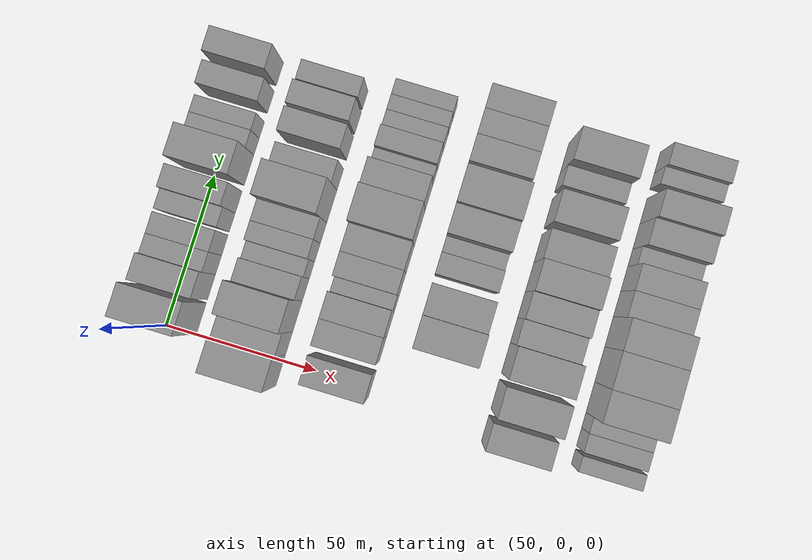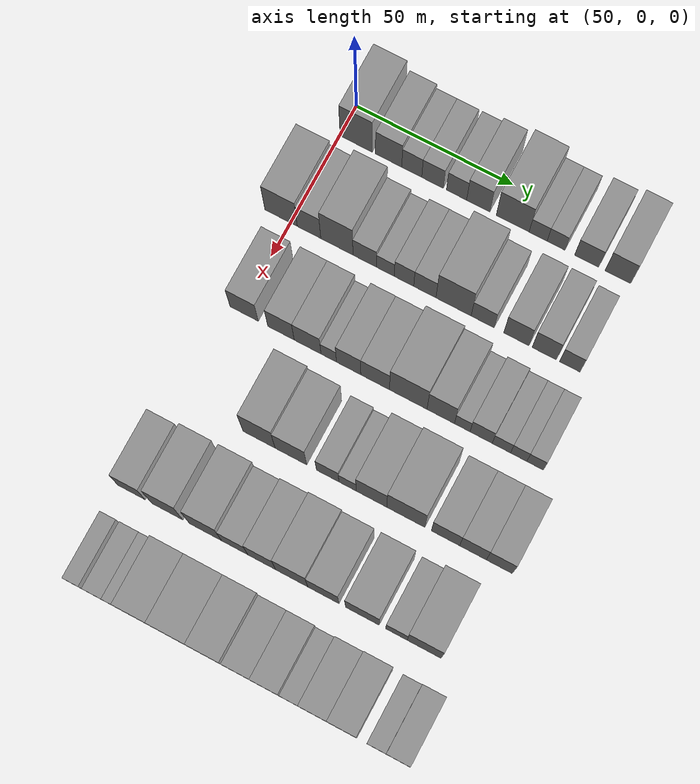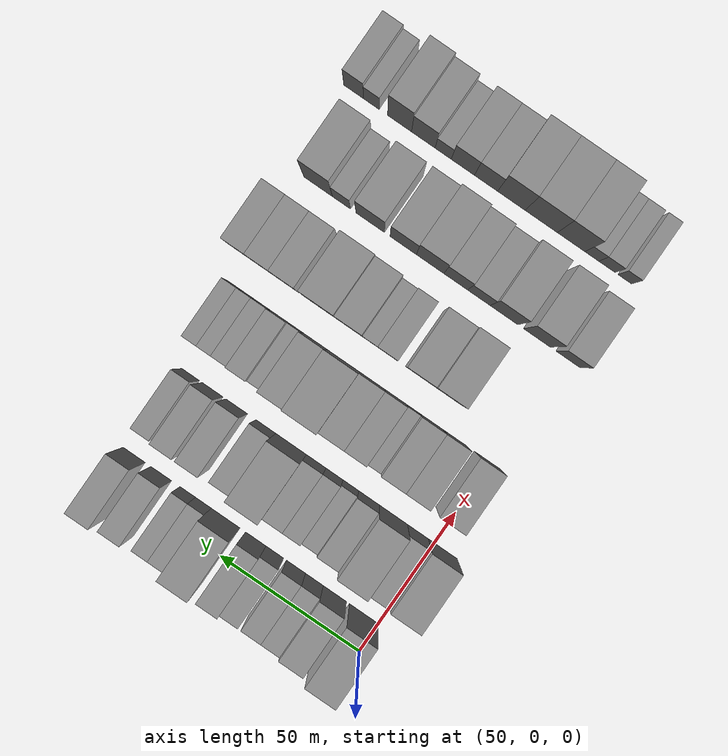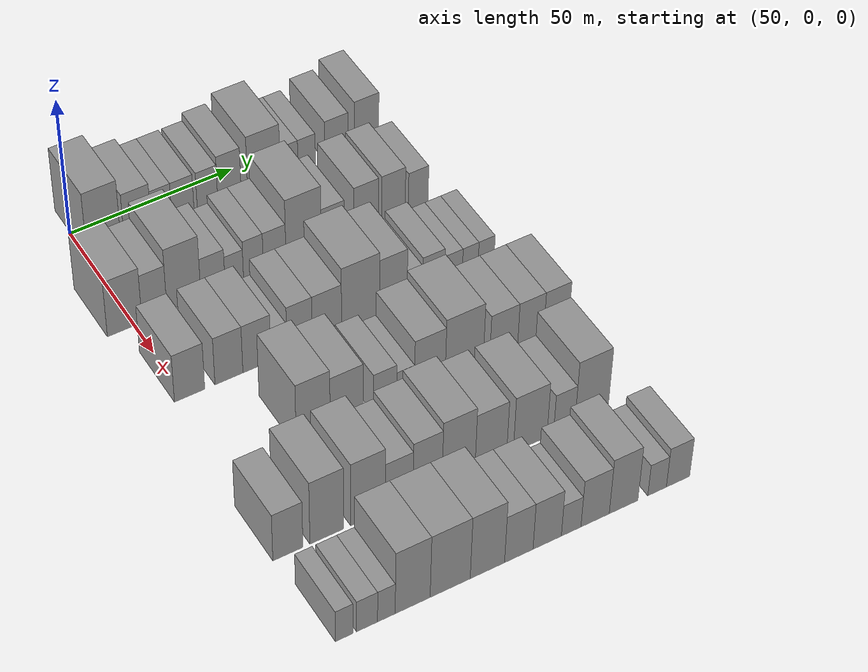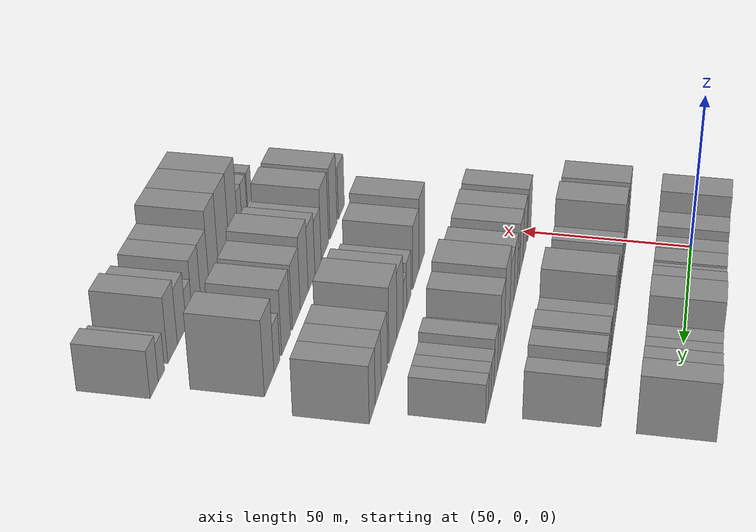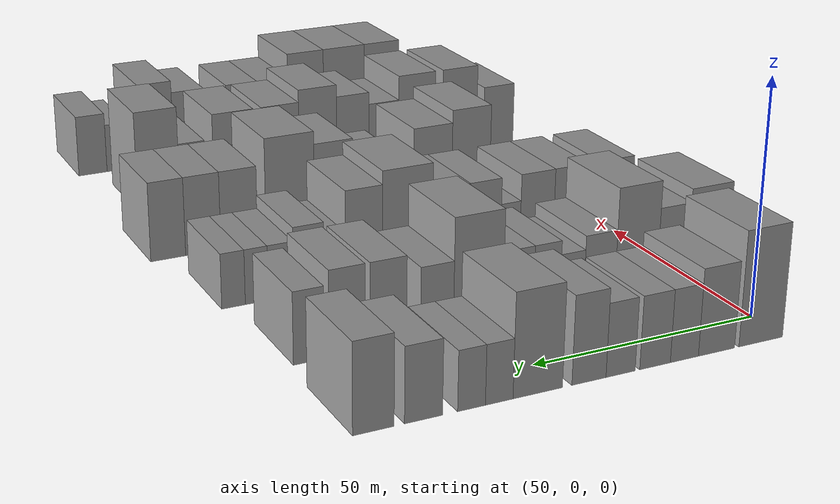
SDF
<sdf version="1.6">
 <world name="default">
  <model name="building_56">
   <static>1</static>
   <pose>50.0000 5.3377 0 0.000000 0.000000 0.000000</pose>
   <link name="link">
    <pose>0 0 12.00 0 0 0</pose>
    <collision name="collision"><geometry><box><size>20.0000 10.2984 24.0000</size></box></geometry></collision>
    <visual name="visual">
     <cast_shadows>0</cast_shadows>
     <geometry><box><size>20.0000 10.2984 24.0000</size></box></geometry>
     <material>
      <script>
       <uri>model://grey_wall/materials/scripts</uri>
       <uri>model://grey_wall/materials/textures</uri>
       <name>vrc/grey_wall</name>
      </script>
     </material>
    </visual>
   </link>
  </model>
  <model name="building_57">
   <static>1</static>
   <pose>50.0000 15.6601 0 0.000000 0.000000 0.000000</pose>
   <link name="link">
    <pose>0 0 9.00 0 0 0</pose>
    <collision name="collision"><geometry><box><size>20.0000 8.3464 18.0000</size></box></geometry></collision>
    <visual name="visual">
     <cast_shadows>0</cast_shadows>
     <geometry><box><size>20.0000 8.3464 18.0000</size></box></geometry>
     <material>
      <script>
       <uri>model://grey_wall/materials/scripts</uri>
       <uri>model://grey_wall/materials/textures</uri>
       <name>vrc/grey_wall</name>
      </script>
     </material>
    </visual>
   </link>
  </model>
  <model name="building_58">
   <static>1</static>
   <pose>50.0000 23.0112 0 0.000000 0.000000 0.000000</pose>
   <link name="link">
    <pose>0 0 7.50 0 0 0</pose>
    <collision name="collision"><geometry><box><size>20.0000 6.3558 15.0000</size></box></geometry></collision>
    <visual name="visual">
     <cast_shadows>0</cast_shadows>
     <geometry><box><size>20.0000 6.3558 15.0000</size></box></geometry>
     <material>
      <script>
       <uri>model://grey_wall/materials/scripts</uri>
       <uri>model://grey_wall/materials/textures</uri>
       <name>vrc/grey_wall</name>
      </script>
     </material>
    </visual>
   </link>
  </model>
  <model name="building_59">
   <static>1</static>
   <pose>50.0000 29.6008 0 0.000000 0.000000 0.000000</pose>
   <link name="link">
    <pose>0 0 7.50 0 0 0</pose>
    <collision name="collision"><geometry><box><size>20.0000 6.8233 15.0000</size></box></geometry></collision>
    <visual name="visual">
     <cast_shadows>0</cast_shadows>
     <geometry><box><size>20.0000 6.8233 15.0000</size></box></geometry>
     <material>
      <script>
       <uri>model://grey_wall/materials/scripts</uri>
       <uri>model://grey_wall/materials/textures</uri>
       <name>vrc/grey_wall</name>
      </script>
     </material>
    </visual>
   </link>
  </model>
  <model name="building_60">
   <static>1</static>
   <pose>50.0000 37.1964 0 0.000000 0.000000 0.000000</pose>
   <link name="link">
    <pose>0 0 7.50 0 0 0</pose>
    <collision name="collision"><geometry><box><size>20.0000 6.3681 15.0000</size></box></geometry></collision>
    <visual name="visual">
     <cast_shadows>0</cast_shadows>
     <geometry><box><size>20.0000 6.3681 15.0000</size></box></geometry>
     <material>
      <script>
       <uri>model://grey_wall/materials/scripts</uri>
       <uri>model://grey_wall/materials/textures</uri>
       <name>vrc/grey_wall</name>
      </script>
     </material>
    </visual>
   </link>
  </model>
  <model name="building_61">
   <static>1</static>
   <pose>50.0000 44.0449 0 0.000000 0.000000 0.000000</pose>
   <link name="link">
    <pose>0 0 9.00 0 0 0</pose>
    <collision name="collision"><geometry><box><size>20.0000 7.3289 18.0000</size></box></geometry></collision>
    <visual name="visual">
     <cast_shadows>0</cast_shadows>
     <geometry><box><size>20.0000 7.3289 18.0000</size></box></geometry>
     <material>
      <script>
       <uri>model://grey_wall/materials/scripts</uri>
       <uri>model://grey_wall/materials/textures</uri>
       <name>vrc/grey_wall</name>
      </script>
     </material>
    </visual>
   </link>
  </model>
  <model name="building_62">
   <static>1</static>
   <pose>50.0000 54.8682 0 0.000000 0.000000 0.000000</pose>
   <link name="link">
    <pose>0 0 10.50 0 0 0</pose>
    <collision name="collision"><geometry><box><size>20.0000 10.3177 21.0000</size></box></geometry></collision>
    <visual name="visual">
     <cast_shadows>0</cast_shadows>
     <geometry><box><size>20.0000 10.3177 21.0000</size></box></geometry>
     <material>
      <script>
       <uri>model://grey_wall/materials/scripts</uri>
       <uri>model://grey_wall/materials/textures</uri>
       <name>vrc/grey_wall</name>
      </script>
     </material>
    </visual>
   </link>
  </model>
  <model name="building_63">
   <static>1</static>
   <pose>50.0000 62.8464 0 0.000000 0.000000 0.000000</pose>
   <link name="link">
    <pose>0 0 6.00 0 0 0</pose>
    <collision name="collision"><geometry><box><size>20.0000 5.6387 12.0000</size></box></geometry></collision>
    <visual name="visual">
     <cast_shadows>0</cast_shadows>
     <geometry><box><size>20.0000 5.6387 12.0000</size></box></geometry>
     <material>
      <script>
       <uri>model://grey_wall/materials/scripts</uri>
       <uri>model://grey_wall/materials/textures</uri>
       <name>vrc/grey_wall</name>
      </script>
     </material>
    </visual>
   </link>
  </model>
  <model name="building_64">
   <static>1</static>
   <pose>50.0000 68.4595 0 0.000000 0.000000 0.000000</pose>
   <link name="link">
    <pose>0 0 6.00 0 0 0</pose>
    <collision name="collision"><geometry><box><size>20.0000 5.5874 12.0000</size></box></geometry></collision>
    <visual name="visual">
     <cast_shadows>0</cast_shadows>
     <geometry><box><size>20.0000 5.5874 12.0000</size></box></geometry>
     <material>
      <script>
       <uri>model://grey_wall/materials/scripts</uri>
       <uri>model://grey_wall/materials/textures</uri>
       <name>vrc/grey_wall</name>
      </script>
     </material>
    </visual>
   </link>
  </model>
  <model name="building_65">
   <static>1</static>
   <pose>50.0000 77.9872 0 0.000000 0.000000 0.000000</pose>
   <link name="link">
    <pose>0 0 7.50 0 0 0</pose>
    <collision name="collision"><geometry><box><size>20.0000 7.4680 15.0000</size></box></geometry></collision>
    <visual name="visual">
     <cast_shadows>0</cast_shadows>
     <geometry><box><size>20.0000 7.4680 15.0000</size></box></geometry>
     <material>
      <script>
       <uri>model://grey_wall/materials/scripts</uri>
       <uri>model://grey_wall/materials/textures</uri>
       <name>vrc/grey_wall</name>
      </script>
     </material>
    </visual>
   </link>
  </model>
  <model name="building_66">
   <static>1</static>
   <pose>50.0000 87.6970 0 0.000000 0.000000 0.000000</pose>
   <link name="link">
    <pose>0 0 9.00 0 0 0</pose>
    <collision name="collision"><geometry><box><size>20.0000 7.9515 18.0000</size></box></geometry></collision>
    <visual name="visual">
     <cast_shadows>0</cast_shadows>
     <geometry><box><size>20.0000 7.9515 18.0000</size></box></geometry>
     <material>
      <script>
       <uri>model://grey_wall/materials/scripts</uri>
       <uri>model://grey_wall/materials/textures</uri>
       <name>vrc/grey_wall</name>
      </script>
     </material>
    </visual>
   </link>
  </model>
  <model name="building_164">
   <static>1</static>
   <pose>79.0000 -2.9536 0 0.000000 0.000000 0.000000</pose>
   <link name="link">
    <pose>0 0 10.50 0 0 0</pose>
    <collision name="collision"><geometry><box><size>20.0000 10.2951 21.0000</size></box></geometry></collision>
    <visual name="visual">
     <cast_shadows>0</cast_shadows>
     <geometry><box><size>20.0000 10.2951 21.0000</size></box></geometry>
     <material>
      <script>
       <uri>model://grey_wall/materials/scripts</uri>
       <uri>model://grey_wall/materials/textures</uri>
       <name>vrc/grey_wall</name>
      </script>
     </material>
    </visual>
   </link>
  </model>
  <model name="building_165">
   <static>1</static>
   <pose>79.0000 5.9318 0 0.000000 0.000000 0.000000</pose>
   <link name="link">
    <pose>0 0 9.00 0 0 0</pose>
    <collision name="collision"><geometry><box><size>20.0000 7.4758 18.0000</size></box></geometry></collision>
    <visual name="visual">
     <cast_shadows>0</cast_shadows>
     <geometry><box><size>20.0000 7.4758 18.0000</size></box></geometry>
     <material>
      <script>
       <uri>model://grey_wall/materials/scripts</uri>
       <uri>model://grey_wall/materials/textures</uri>
       <name>vrc/grey_wall</name>
      </script>
     </material>
    </visual>
   </link>
  </model>
  <model name="building_166">
   <static>1</static>
   <pose>79.0000 14.7659 0 0.000000 0.000000 0.000000</pose>
   <link name="link">
    <pose>0 0 12.00 0 0 0</pose>
    <collision name="collision"><geometry><box><size>20.0000 10.1925 24.0000</size></box></geometry></collision>
    <visual name="visual">
     <cast_shadows>0</cast_shadows>
     <geometry><box><size>20.0000 10.1925 24.0000</size></box></geometry>
     <material>
      <script>
       <uri>model://grey_wall/materials/scripts</uri>
       <uri>model://grey_wall/materials/textures</uri>
       <name>vrc/grey_wall</name>
      </script>
     </material>
    </visual>
   </link>
  </model>
  <model name="building_167">
   <static>1</static>
   <pose>79.0000 23.5472 0 0.000000 0.000000 0.000000</pose>
   <link name="link">
    <pose>0 0 7.50 0 0 0</pose>
    <collision name="collision"><geometry><box><size>20.0000 7.3701 15.0000</size></box></geometry></collision>
    <visual name="visual">
     <cast_shadows>0</cast_shadows>
     <geometry><box><size>20.0000 7.3701 15.0000</size></box></geometry>
     <material>
      <script>
       <uri>model://grey_wall/materials/scripts</uri>
       <uri>model://grey_wall/materials/textures</uri>
       <name>vrc/grey_wall</name>
      </script>
     </material>
    </visual>
   </link>
  </model>
  <model name="building_168">
   <static>1</static>
   <pose>79.0000 30.0317 0 0.000000 0.000000 0.000000</pose>
   <link name="link">
    <pose>0 0 6.00 0 0 0</pose>
    <collision name="collision"><geometry><box><size>20.0000 5.5988 12.0000</size></box></geometry></collision>
    <visual name="visual">
     <cast_shadows>0</cast_shadows>
     <geometry><box><size>20.0000 5.5988 12.0000</size></box></geometry>
     <material>
      <script>
       <uri>model://grey_wall/materials/scripts</uri>
       <uri>model://grey_wall/materials/textures</uri>
       <name>vrc/grey_wall</name>
      </script>
     </material>
    </visual>
   </link>
  </model>
  <model name="building_169">
   <static>1</static>
   <pose>79.0000 35.8856 0 0.000000 0.000000 0.000000</pose>
   <link name="link">
    <pose>0 0 7.50 0 0 0</pose>
    <collision name="collision"><geometry><box><size>20.0000 6.1090 15.0000</size></box></geometry></collision>
    <visual name="visual">
     <cast_shadows>0</cast_shadows>
     <geometry><box><size>20.0000 6.1090 15.0000</size></box></geometry>
     <material>
      <script>
       <uri>model://grey_wall/materials/scripts</uri>
       <uri>model://grey_wall/materials/textures</uri>
       <name>vrc/grey_wall</name>
      </script>
     </material>
    </visual>
   </link>
  </model>
  <model name="building_170">
   <static>1</static>
   <pose>79.0000 42.4208 0 0.000000 0.000000 0.000000</pose>
   <link name="link">
    <pose>0 0 7.50 0 0 0</pose>
    <collision name="collision"><geometry><box><size>20.0000 6.9614 15.0000</size></box></geometry></collision>
    <visual name="visual">
     <cast_shadows>0</cast_shadows>
     <geometry><box><size>20.0000 6.9614 15.0000</size></box></geometry>
     <material>
      <script>
       <uri>model://grey_wall/materials/scripts</uri>
       <uri>model://grey_wall/materials/textures</uri>
       <name>vrc/grey_wall</name>
      </script>
     </material>
    </visual>
   </link>
  </model>
  <model name="building_171">
   <static>1</static>
   <pose>79.0000 51.3883 0 0.000000 0.000000 0.000000</pose>
   <link name="link">
    <pose>0 0 12.00 0 0 0</pose>
    <collision name="collision"><geometry><box><size>20.0000 10.9735 24.0000</size></box></geometry></collision>
    <visual name="visual">
     <cast_shadows>0</cast_shadows>
     <geometry><box><size>20.0000 10.9735 24.0000</size></box></geometry>
     <material>
      <script>
       <uri>model://grey_wall/materials/scripts</uri>
       <uri>model://grey_wall/materials/textures</uri>
       <name>vrc/grey_wall</name>
      </script>
     </material>
    </visual>
   </link>
  </model>
  <model name="building_172">
   <static>1</static>
   <pose>79.0000 60.4503 0 0.000000 0.000000 0.000000</pose>
   <link name="link">
    <pose>0 0 7.50 0 0 0</pose>
    <collision name="collision"><geometry><box><size>20.0000 7.1504 15.0000</size></box></geometry></collision>
    <visual name="visual">
     <cast_shadows>0</cast_shadows>
     <geometry><box><size>20.0000 7.1504 15.0000</size></box></geometry>
     <material>
      <script>
       <uri>model://grey_wall/materials/scripts</uri>
       <uri>model://grey_wall/materials/textures</uri>
       <name>vrc/grey_wall</name>
      </script>
     </material>
    </visual>
   </link>
  </model>
  <model name="building_173">
   <static>1</static>
   <pose>79.0000 70.9192 0 0.000000 0.000000 0.000000</pose>
   <link name="link">
    <pose>0 0 9.00 0 0 0</pose>
    <collision name="collision"><geometry><box><size>20.0000 7.7874 18.0000</size></box></geometry></collision>
    <visual name="visual">
     <cast_shadows>0</cast_shadows>
     <geometry><box><size>20.0000 7.7874 18.0000</size></box></geometry>
     <material>
      <script>
       <uri>model://grey_wall/materials/scripts</uri>
       <uri>model://grey_wall/materials/textures</uri>
       <name>vrc/grey_wall</name>
      </script>
     </material>
    </visual>
   </link>
  </model>
  <model name="building_174">
   <static>1</static>
   <pose>79.0000 79.5469 0 0.000000 0.000000 0.000000</pose>
   <link name="link">
    <pose>0 0 9.00 0 0 0</pose>
    <collision name="collision"><geometry><box><size>20.0000 7.4681 18.0000</size></box></geometry></collision>
    <visual name="visual">
     <cast_shadows>0</cast_shadows>
     <geometry><box><size>20.0000 7.4681 18.0000</size></box></geometry>
     <material>
      <script>
       <uri>model://grey_wall/materials/scripts</uri>
       <uri>model://grey_wall/materials/textures</uri>
       <name>vrc/grey_wall</name>
      </script>
     </material>
    </visual>
   </link>
  </model>
  <model name="building_175">
   <static>1</static>
   <pose>79.0000 87.4397 0 0.000000 0.000000 0.000000</pose>
   <link name="link">
    <pose>0 0 7.50 0 0 0</pose>
    <collision name="collision"><geometry><box><size>20.0000 6.3174 15.0000</size></box></geometry></collision>
    <visual name="visual">
     <cast_shadows>0</cast_shadows>
     <geometry><box><size>20.0000 6.3174 15.0000</size></box></geometry>
     <material>
      <script>
       <uri>model://grey_wall/materials/scripts</uri>
       <uri>model://grey_wall/materials/textures</uri>
       <name>vrc/grey_wall</name>
      </script>
     </material>
    </visual>
   </link>
  </model>
  <model name="building_278">
   <static>1</static>
   <pose>108.0000 1.2918 0 0.000000 0.000000 0.000000</pose>
   <link name="link">
    <pose>0 0 9.00 0 0 0</pose>
    <collision name="collision"><geometry><box><size>20.0000 8.9008 18.0000</size></box></geometry></collision>
    <visual name="visual">
     <cast_shadows>0</cast_shadows>
     <geometry><box><size>20.0000 8.9008 18.0000</size></box></geometry>
     <material>
      <script>
       <uri>model://grey_wall/materials/scripts</uri>
       <uri>model://grey_wall/materials/textures</uri>
       <name>vrc/grey_wall</name>
      </script>
     </material>
    </visual>
   </link>
  </model>
  <model name="building_279">
   <static>1</static>
   <pose>108.0000 12.8833 0 0.000000 0.000000 0.000000</pose>
   <link name="link">
    <pose>0 0 9.00 0 0 0</pose>
    <collision name="collision"><geometry><box><size>20.0000 8.2822 18.0000</size></box></geometry></collision>
    <visual name="visual">
     <cast_shadows>0</cast_shadows>
     <geometry><box><size>20.0000 8.2822 18.0000</size></box></geometry>
     <material>
      <script>
       <uri>model://grey_wall/materials/scripts</uri>
       <uri>model://grey_wall/materials/textures</uri>
       <name>vrc/grey_wall</name>
      </script>
     </material>
    </visual>
   </link>
  </model>
  <model name="building_280">
   <static>1</static>
   <pose>108.0000 21.2233 0 0.000000 0.000000 0.000000</pose>
   <link name="link">
    <pose>0 0 9.00 0 0 0</pose>
    <collision name="collision"><geometry><box><size>20.0000 8.3977 18.0000</size></box></geometry></collision>
    <visual name="visual">
     <cast_shadows>0</cast_shadows>
     <geometry><box><size>20.0000 8.3977 18.0000</size></box></geometry>
     <material>
      <script>
       <uri>model://grey_wall/materials/scripts</uri>
       <uri>model://grey_wall/materials/textures</uri>
       <name>vrc/grey_wall</name>
      </script>
     </material>
    </visual>
   </link>
  </model>
  <model name="building_281">
   <static>1</static>
   <pose>108.0000 27.8239 0 0.000000 0.000000 0.000000</pose>
   <link name="link">
    <pose>0 0 6.00 0 0 0</pose>
    <collision name="collision"><geometry><box><size>20.0000 4.8034 12.0000</size></box></geometry></collision>
    <visual name="visual">
     <cast_shadows>0</cast_shadows>
     <geometry><box><size>20.0000 4.8034 12.0000</size></box></geometry>
     <material>
      <script>
       <uri>model://grey_wall/materials/scripts</uri>
       <uri>model://grey_wall/materials/textures</uri>
       <name>vrc/grey_wall</name>
      </script>
     </material>
    </visual>
   </link>
  </model>
  <model name="building_282">
   <static>1</static>
   <pose>108.0000 34.0254 0 0.000000 0.000000 0.000000</pose>
   <link name="link">
    <pose>0 0 9.00 0 0 0</pose>
    <collision name="collision"><geometry><box><size>20.0000 7.5995 18.0000</size></box></geometry></collision>
    <visual name="visual">
     <cast_shadows>0</cast_shadows>
     <geometry><box><size>20.0000 7.5995 18.0000</size></box></geometry>
     <material>
      <script>
       <uri>model://grey_wall/materials/scripts</uri>
       <uri>model://grey_wall/materials/textures</uri>
       <name>vrc/grey_wall</name>
      </script>
     </material>
    </visual>
   </link>
  </model>
  <model name="building_283">
   <static>1</static>
   <pose>108.0000 42.2703 0 0.000000 0.000000 0.000000</pose>
   <link name="link">
    <pose>0 0 9.00 0 0 0</pose>
    <collision name="collision"><geometry><box><size>20.0000 8.8905 18.0000</size></box></geometry></collision>
    <visual name="visual">
     <cast_shadows>0</cast_shadows>
     <geometry><box><size>20.0000 8.8905 18.0000</size></box></geometry>
     <material>
      <script>
       <uri>model://grey_wall/materials/scripts</uri>
       <uri>model://grey_wall/materials/textures</uri>
       <name>vrc/grey_wall</name>
      </script>
     </material>
    </visual>
   </link>
  </model>
  <model name="building_284">
   <static>1</static>
   <pose>108.0000 52.5350 0 0.000000 0.000000 0.000000</pose>
   <link name="link">
    <pose>0 0 12.00 0 0 0</pose>
    <collision name="collision"><geometry><box><size>20.0000 11.6388 24.0000</size></box></geometry></collision>
    <visual name="visual">
     <cast_shadows>0</cast_shadows>
     <geometry><box><size>20.0000 11.6388 24.0000</size></box></geometry>
     <material>
      <script>
       <uri>model://grey_wall/materials/scripts</uri>
       <uri>model://grey_wall/materials/textures</uri>
       <name>vrc/grey_wall</name>
      </script>
     </material>
    </visual>
   </link>
  </model>
  <model name="building_285">
   <static>1</static>
   <pose>108.0000 62.5821 0 0.000000 0.000000 0.000000</pose>
   <link name="link">
    <pose>0 0 10.50 0 0 0</pose>
    <collision name="collision"><geometry><box><size>20.0000 8.4555 21.0000</size></box></geometry></collision>
    <visual name="visual">
     <cast_shadows>0</cast_shadows>
     <geometry><box><size>20.0000 8.4555 21.0000</size></box></geometry>
     <material>
      <script>
       <uri>model://grey_wall/materials/scripts</uri>
       <uri>model://grey_wall/materials/textures</uri>
       <name>vrc/grey_wall</name>
      </script>
     </material>
    </visual>
   </link>
  </model>
  <model name="building_286">
   <static>1</static>
   <pose>108.0000 69.2173 0 0.000000 0.000000 0.000000</pose>
   <link name="link">
    <pose>0 0 6.00 0 0 0</pose>
    <collision name="collision"><geometry><box><size>20.0000 4.8148 12.0000</size></box></geometry></collision>
    <visual name="visual">
     <cast_shadows>0</cast_shadows>
     <geometry><box><size>20.0000 4.8148 12.0000</size></box></geometry>
     <material>
      <script>
       <uri>model://grey_wall/materials/scripts</uri>
       <uri>model://grey_wall/materials/textures</uri>
       <name>vrc/grey_wall</name>
      </script>
     </material>
    </visual>
   </link>
  </model>
  <model name="building_287">
   <static>1</static>
   <pose>108.0000 75.0352 0 0.000000 0.000000 0.000000</pose>
   <link name="link">
    <pose>0 0 7.50 0 0 0</pose>
    <collision name="collision"><geometry><box><size>20.0000 6.8211 15.0000</size></box></geometry></collision>
    <visual name="visual">
     <cast_shadows>0</cast_shadows>
     <geometry><box><size>20.0000 6.8211 15.0000</size></box></geometry>
     <material>
      <script>
       <uri>model://grey_wall/materials/scripts</uri>
       <uri>model://grey_wall/materials/textures</uri>
       <name>vrc/grey_wall</name>
      </script>
     </material>
    </visual>
   </link>
  </model>
  <model name="building_288">
   <static>1</static>
   <pose>108.0000 81.2509 0 0.000000 0.000000 0.000000</pose>
   <link name="link">
    <pose>0 0 6.00 0 0 0</pose>
    <collision name="collision"><geometry><box><size>20.0000 5.6101 12.0000</size></box></geometry></collision>
    <visual name="visual">
     <cast_shadows>0</cast_shadows>
     <geometry><box><size>20.0000 5.6101 12.0000</size></box></geometry>
     <material>
      <script>
       <uri>model://grey_wall/materials/scripts</uri>
       <uri>model://grey_wall/materials/textures</uri>
       <name>vrc/grey_wall</name>
      </script>
     </material>
    </visual>
   </link>
  </model>
  <model name="building_289">
   <static>1</static>
   <pose>108.0000 86.5402 0 0.000000 0.000000 0.000000</pose>
   <link name="link">
    <pose>0 0 6.00 0 0 0</pose>
    <collision name="collision"><geometry><box><size>20.0000 4.9685 12.0000</size></box></geometry></collision>
    <visual name="visual">
     <cast_shadows>0</cast_shadows>
     <geometry><box><size>20.0000 4.9685 12.0000</size></box></geometry>
     <material>
      <script>
       <uri>model://grey_wall/materials/scripts</uri>
       <uri>model://grey_wall/materials/textures</uri>
       <name>vrc/grey_wall</name>
      </script>
     </material>
    </visual>
   </link>
  </model>
  <model name="building_290">
   <static>1</static>
   <pose>108.0000 91.5562 0 0.000000 0.000000 0.000000</pose>
   <link name="link">
    <pose>0 0 6.00 0 0 0</pose>
    <collision name="collision"><geometry><box><size>20.0000 5.0635 12.0000</size></box></geometry></collision>
    <visual name="visual">
     <cast_shadows>0</cast_shadows>
     <geometry><box><size>20.0000 5.0635 12.0000</size></box></geometry>
     <material>
      <script>
       <uri>model://grey_wall/materials/scripts</uri>
       <uri>model://grey_wall/materials/textures</uri>
       <name>vrc/grey_wall</name>
      </script>
     </material>
    </visual>
   </link>
  </model>
  <model name="building_393">
   <static>1</static>
   <pose>137.0000 21.9258 0 0.000000 0.000000 0.000000</pose>
   <link name="link">
    <pose>0 0 12.00 0 0 0</pose>
    <collision name="collision"><geometry><box><size>20.0000 9.9744 24.0000</size></box></geometry></collision>
    <visual name="visual">
     <cast_shadows>0</cast_shadows>
     <geometry><box><size>20.0000 9.9744 24.0000</size></box></geometry>
     <material>
      <script>
       <uri>model://grey_wall/materials/scripts</uri>
       <uri>model://grey_wall/materials/textures</uri>
       <name>vrc/grey_wall</name>
      </script>
     </material>
    </visual>
   </link>
  </model>
  <model name="building_394">
   <static>1</static>
   <pose>137.0000 31.8021 0 0.000000 0.000000 0.000000</pose>
   <link name="link">
    <pose>0 0 10.50 0 0 0</pose>
    <collision name="collision"><geometry><box><size>20.0000 9.7782 21.0000</size></box></geometry></collision>
    <visual name="visual">
     <cast_shadows>0</cast_shadows>
     <geometry><box><size>20.0000 9.7782 21.0000</size></box></geometry>
     <material>
      <script>
       <uri>model://grey_wall/materials/scripts</uri>
       <uri>model://grey_wall/materials/textures</uri>
       <name>vrc/grey_wall</name>
      </script>
     </material>
    </visual>
   </link>
  </model>
  <model name="building_395">
   <static>1</static>
   <pose>137.0000 43.1486 0 0.000000 0.000000 0.000000</pose>
   <link name="link">
    <pose>0 0 7.50 0 0 0</pose>
    <collision name="collision"><geometry><box><size>20.0000 6.9146 15.0000</size></box></geometry></collision>
    <visual name="visual">
     <cast_shadows>0</cast_shadows>
     <geometry><box><size>20.0000 6.9146 15.0000</size></box></geometry>
     <material>
      <script>
       <uri>model://grey_wall/materials/scripts</uri>
       <uri>model://grey_wall/materials/textures</uri>
       <name>vrc/grey_wall</name>
      </script>
     </material>
    </visual>
   </link>
  </model>
  <model name="building_396">
   <static>1</static>
   <pose>137.0000 49.2742 0 0.000000 0.000000 0.000000</pose>
   <link name="link">
    <pose>0 0 6.00 0 0 0</pose>
    <collision name="collision"><geometry><box><size>20.0000 5.3367 12.0000</size></box></geometry></collision>
    <visual name="visual">
     <cast_shadows>0</cast_shadows>
     <geometry><box><size>20.0000 5.3367 12.0000</size></box></geometry>
     <material>
      <script>
       <uri>model://grey_wall/materials/scripts</uri>
       <uri>model://grey_wall/materials/textures</uri>
       <name>vrc/grey_wall</name>
      </script>
     </material>
    </visual>
   </link>
  </model>
  <model name="building_397">
   <static>1</static>
   <pose>137.0000 56.6134 0 0.000000 0.000000 0.000000</pose>
   <link name="link">
    <pose>0 0 10.50 0 0 0</pose>
    <collision name="collision"><geometry><box><size>20.0000 9.3418 21.0000</size></box></geometry></collision>
    <visual name="visual">
     <cast_shadows>0</cast_shadows>
     <geometry><box><size>20.0000 9.3418 21.0000</size></box></geometry>
     <material>
      <script>
       <uri>model://grey_wall/materials/scripts</uri>
       <uri>model://grey_wall/materials/textures</uri>
       <name>vrc/grey_wall</name>
      </script>
     </material>
    </visual>
   </link>
  </model>
  <model name="building_398">
   <static>1</static>
   <pose>137.0000 67.1067 0 0.000000 0.000000 0.000000</pose>
   <link name="link">
    <pose>0 0 12.00 0 0 0</pose>
    <collision name="collision"><geometry><box><size>20.0000 11.6448 24.0000</size></box></geometry></collision>
    <visual name="visual">
     <cast_shadows>0</cast_shadows>
     <geometry><box><size>20.0000 11.6448 24.0000</size></box></geometry>
     <material>
      <script>
       <uri>model://grey_wall/materials/scripts</uri>
       <uri>model://grey_wall/materials/textures</uri>
       <name>vrc/grey_wall</name>
      </script>
     </material>
    </visual>
   </link>
  </model>
  <model name="building_399">
   <static>1</static>
   <pose>137.0000 79.2334 0 0.000000 0.000000 0.000000</pose>
   <link name="link">
    <pose>0 0 9.00 0 0 0</pose>
    <collision name="collision"><geometry><box><size>20.0000 8.6085 18.0000</size></box></geometry></collision>
    <visual name="visual">
     <cast_shadows>0</cast_shadows>
     <geometry><box><size>20.0000 8.6085 18.0000</size></box></geometry>
     <material>
      <script>
       <uri>model://grey_wall/materials/scripts</uri>
       <uri>model://grey_wall/materials/textures</uri>
       <name>vrc/grey_wall</name>
      </script>
     </material>
    </visual>
   </link>
  </model>
  <model name="building_400">
   <static>1</static>
   <pose>137.0000 87.5832 0 0.000000 0.000000 0.000000</pose>
   <link name="link">
    <pose>0 0 9.00 0 0 0</pose>
    <collision name="collision"><geometry><box><size>20.0000 8.0912 18.0000</size></box></geometry></collision>
    <visual name="visual">
     <cast_shadows>0</cast_shadows>
     <geometry><box><size>20.0000 8.0912 18.0000</size></box></geometry>
     <material>
      <script>
       <uri>model://grey_wall/materials/scripts</uri>
       <uri>model://grey_wall/materials/textures</uri>
       <name>vrc/grey_wall</name>
      </script>
     </material>
    </visual>
   </link>
  </model>
  <model name="building_401">
   <static>1</static>
   <pose>137.0000 95.5647 0 0.000000 0.000000 0.000000</pose>
   <link name="link">
    <pose>0 0 9.00 0 0 0</pose>
    <collision name="collision"><geometry><box><size>20.0000 7.8718 18.0000</size></box></geometry></collision>
    <visual name="visual">
     <cast_shadows>0</cast_shadows>
     <geometry><box><size>20.0000 7.8718 18.0000</size></box></geometry>
     <material>
      <script>
       <uri>model://grey_wall/materials/scripts</uri>
       <uri>model://grey_wall/materials/textures</uri>
       <name>vrc/grey_wall</name>
      </script>
     </material>
    </visual>
   </link>
  </model>
  <model name="building_504">
   <static>1</static>
   <pose>166.0000 -1.5237 0 0.000000 0.000000 0.000000</pose>
   <link name="link">
    <pose>0 0 9.00 0 0 0</pose>
    <collision name="collision"><geometry><box><size>20.0000 8.5031 18.0000</size></box></geometry></collision>
    <visual name="visual">
     <cast_shadows>0</cast_shadows>
     <geometry><box><size>20.0000 8.5031 18.0000</size></box></geometry>
     <material>
      <script>
       <uri>model://grey_wall/materials/scripts</uri>
       <uri>model://grey_wall/materials/textures</uri>
       <name>vrc/grey_wall</name>
      </script>
     </material>
    </visual>
   </link>
  </model>
  <model name="building_505">
   <static>1</static>
   <pose>166.0000 9.5569 0 0.000000 0.000000 0.000000</pose>
   <link name="link">
    <pose>0 0 12.00 0 0 0</pose>
    <collision name="collision"><geometry><box><size>20.0000 9.6581 24.0000</size></box></geometry></collision>
    <visual name="visual">
     <cast_shadows>0</cast_shadows>
     <geometry><box><size>20.0000 9.6581 24.0000</size></box></geometry>
     <material>
      <script>
       <uri>model://grey_wall/materials/scripts</uri>
       <uri>model://grey_wall/materials/textures</uri>
       <name>vrc/grey_wall</name>
      </script>
     </material>
    </visual>
   </link>
  </model>
  <model name="building_506">
   <static>1</static>
   <pose>166.0000 21.3772 0 0.000000 0.000000 0.000000</pose>
   <link name="link">
    <pose>0 0 12.00 0 0 0</pose>
    <collision name="collision"><geometry><box><size>20.0000 9.9826 24.0000</size></box></geometry></collision>
    <visual name="visual">
     <cast_shadows>0</cast_shadows>
     <geometry><box><size>20.0000 9.9826 24.0000</size></box></geometry>
     <material>
      <script>
       <uri>model://grey_wall/materials/scripts</uri>
       <uri>model://grey_wall/materials/textures</uri>
       <name>vrc/grey_wall</name>
      </script>
     </material>
    </visual>
   </link>
  </model>
  <model name="building_507">
   <static>1</static>
   <pose>166.0000 30.3991 0 0.000000 0.000000 0.000000</pose>
   <link name="link">
    <pose>0 0 9.00 0 0 0</pose>
    <collision name="collision"><geometry><box><size>20.0000 8.0612 18.0000</size></box></geometry></collision>
    <visual name="visual">
     <cast_shadows>0</cast_shadows>
     <geometry><box><size>20.0000 8.0612 18.0000</size></box></geometry>
     <material>
      <script>
       <uri>model://grey_wall/materials/scripts</uri>
       <uri>model://grey_wall/materials/textures</uri>
       <name>vrc/grey_wall</name>
      </script>
     </material>
    </visual>
   </link>
  </model>
  <model name="building_508">
   <static>1</static>
   <pose>166.0000 38.6995 0 0.000000 0.000000 0.000000</pose>
   <link name="link">
    <pose>0 0 10.50 0 0 0</pose>
    <collision name="collision"><geometry><box><size>20.0000 8.5395 21.0000</size></box></geometry></collision>
    <visual name="visual">
     <cast_shadows>0</cast_shadows>
     <geometry><box><size>20.0000 8.5395 21.0000</size></box></geometry>
     <material>
      <script>
       <uri>model://grey_wall/materials/scripts</uri>
       <uri>model://grey_wall/materials/textures</uri>
       <name>vrc/grey_wall</name>
      </script>
     </material>
    </visual>
   </link>
  </model>
  <model name="building_509">
   <static>1</static>
   <pose>166.0000 47.8733 0 0.000000 0.000000 0.000000</pose>
   <link name="link">
    <pose>0 0 12.00 0 0 0</pose>
    <collision name="collision"><geometry><box><size>20.0000 9.8081 24.0000</size></box></geometry></collision>
    <visual name="visual">
     <cast_shadows>0</cast_shadows>
     <geometry><box><size>20.0000 9.8081 24.0000</size></box></geometry>
     <material>
      <script>
       <uri>model://grey_wall/materials/scripts</uri>
       <uri>model://grey_wall/materials/textures</uri>
       <name>vrc/grey_wall</name>
      </script>
     </material>
    </visual>
   </link>
  </model>
  <model name="building_510">
   <static>1</static>
   <pose>166.0000 57.5107 0 0.000000 0.000000 0.000000</pose>
   <link name="link">
    <pose>0 0 10.50 0 0 0</pose>
    <collision name="collision"><geometry><box><size>20.0000 9.4669 21.0000</size></box></geometry></collision>
    <visual name="visual">
     <cast_shadows>0</cast_shadows>
     <geometry><box><size>20.0000 9.4669 21.0000</size></box></geometry>
     <material>
      <script>
       <uri>model://grey_wall/materials/scripts</uri>
       <uri>model://grey_wall/materials/textures</uri>
       <name>vrc/grey_wall</name>
      </script>
     </material>
    </visual>
   </link>
  </model>
  <model name="building_511">
   <static>1</static>
   <pose>166.0000 69.3303 0 0.000000 0.000000 0.000000</pose>
   <link name="link">
    <pose>0 0 10.50 0 0 0</pose>
    <collision name="collision"><geometry><box><size>20.0000 10.1723 21.0000</size></box></geometry></collision>
    <visual name="visual">
     <cast_shadows>0</cast_shadows>
     <geometry><box><size>20.0000 10.1723 21.0000</size></box></geometry>
     <material>
      <script>
       <uri>model://grey_wall/materials/scripts</uri>
       <uri>model://grey_wall/materials/textures</uri>
       <name>vrc/grey_wall</name>
      </script>
     </material>
    </visual>
   </link>
  </model>
  <model name="building_512">
   <static>1</static>
   <pose>166.0000 79.6611 0 0.000000 0.000000 0.000000</pose>
   <link name="link">
    <pose>0 0 7.50 0 0 0</pose>
    <collision name="collision"><geometry><box><size>20.0000 6.4892 15.0000</size></box></geometry></collision>
    <visual name="visual">
     <cast_shadows>0</cast_shadows>
     <geometry><box><size>20.0000 6.4892 15.0000</size></box></geometry>
     <material>
      <script>
       <uri>model://grey_wall/materials/scripts</uri>
       <uri>model://grey_wall/materials/textures</uri>
       <name>vrc/grey_wall</name>
      </script>
     </material>
    </visual>
   </link>
  </model>
  <model name="building_513">
   <static>1</static>
   <pose>166.0000 87.9920 0 0.000000 0.000000 0.000000</pose>
   <link name="link">
    <pose>0 0 12.00 0 0 0</pose>
    <collision name="collision"><geometry><box><size>20.0000 10.1726 24.0000</size></box></geometry></collision>
    <visual name="visual">
     <cast_shadows>0</cast_shadows>
     <geometry><box><size>20.0000 10.1726 24.0000</size></box></geometry>
     <material>
      <script>
       <uri>model://grey_wall/materials/scripts</uri>
       <uri>model://grey_wall/materials/textures</uri>
       <name>vrc/grey_wall</name>
      </script>
     </material>
    </visual>
   </link>
  </model>
  <model name="building_618">
   <static>1</static>
   <pose>195.0000 -1.9528 0 0.000000 0.000000 0.000000</pose>
   <link name="link">
    <pose>0 0 6.00 0 0 0</pose>
    <collision name="collision"><geometry><box><size>20.0000 4.9003 12.0000</size></box></geometry></collision>
    <visual name="visual">
     <cast_shadows>0</cast_shadows>
     <geometry><box><size>20.0000 4.9003 12.0000</size></box></geometry>
     <material>
      <script>
       <uri>model://grey_wall/materials/scripts</uri>
       <uri>model://grey_wall/materials/textures</uri>
       <name>vrc/grey_wall</name>
      </script>
     </material>
    </visual>
   </link>
  </model>
  <model name="building_619">
   <static>1</static>
   <pose>195.0000 4.4335 0 0.000000 0.000000 0.000000</pose>
   <link name="link">
    <pose>0 0 6.00 0 0 0</pose>
    <collision name="collision"><geometry><box><size>20.0000 5.8722 12.0000</size></box></geometry></collision>
    <visual name="visual">
     <cast_shadows>0</cast_shadows>
     <geometry><box><size>20.0000 5.8722 12.0000</size></box></geometry>
     <material>
      <script>
       <uri>model://grey_wall/materials/scripts</uri>
       <uri>model://grey_wall/materials/textures</uri>
       <name>vrc/grey_wall</name>
      </script>
     </material>
    </visual>
   </link>
  </model>
  <model name="building_620">
   <static>1</static>
   <pose>195.0000 9.8475 0 0.000000 0.000000 0.000000</pose>
   <link name="link">
    <pose>0 0 6.00 0 0 0</pose>
    <collision name="collision"><geometry><box><size>20.0000 4.9560 12.0000</size></box></geometry></collision>
    <visual name="visual">
     <cast_shadows>0</cast_shadows>
     <geometry><box><size>20.0000 4.9560 12.0000</size></box></geometry>
     <material>
      <script>
       <uri>model://grey_wall/materials/scripts</uri>
       <uri>model://grey_wall/materials/textures</uri>
       <name>vrc/grey_wall</name>
      </script>
     </material>
    </visual>
   </link>
  </model>
  <model name="building_621">
   <static>1</static>
   <pose>195.0000 17.2913 0 0.000000 0.000000 0.000000</pose>
   <link name="link">
    <pose>0 0 12.00 0 0 0</pose>
    <collision name="collision"><geometry><box><size>20.0000 9.9315 24.0000</size></box></geometry></collision>
    <visual name="visual">
     <cast_shadows>0</cast_shadows>
     <geometry><box><size>20.0000 9.9315 24.0000</size></box></geometry>
     <material>
      <script>
       <uri>model://grey_wall/materials/scripts</uri>
       <uri>model://grey_wall/materials/textures</uri>
       <name>vrc/grey_wall</name>
      </script>
     </material>
    </visual>
   </link>
  </model>
  <model name="building_622">
   <static>1</static>
   <pose>195.0000 28.0000 0 0.000000 0.000000 0.000000</pose>
   <link name="link">
    <pose>0 0 12.00 0 0 0</pose>
    <collision name="collision"><geometry><box><size>20.0000 11.4859 24.0000</size></box></geometry></collision>
    <visual name="visual">
     <cast_shadows>0</cast_shadows>
     <geometry><box><size>20.0000 11.4859 24.0000</size></box></geometry>
     <material>
      <script>
       <uri>model://grey_wall/materials/scripts</uri>
       <uri>model://grey_wall/materials/textures</uri>
       <name>vrc/grey_wall</name>
      </script>
     </material>
    </visual>
   </link>
  </model>
  <model name="building_623">
   <static>1</static>
   <pose>195.0000 38.7147 0 0.000000 0.000000 0.000000</pose>
   <link name="link">
    <pose>0 0 12.00 0 0 0</pose>
    <collision name="collision"><geometry><box><size>20.0000 9.9434 24.0000</size></box></geometry></collision>
    <visual name="visual">
     <cast_shadows>0</cast_shadows>
     <geometry><box><size>20.0000 9.9434 24.0000</size></box></geometry>
     <material>
      <script>
       <uri>model://grey_wall/materials/scripts</uri>
       <uri>model://grey_wall/materials/textures</uri>
       <name>vrc/grey_wall</name>
      </script>
     </material>
    </visual>
   </link>
  </model>
  <model name="building_624">
   <static>1</static>
   <pose>195.0000 47.8367 0 0.000000 0.000000 0.000000</pose>
   <link name="link">
    <pose>0 0 9.00 0 0 0</pose>
    <collision name="collision"><geometry><box><size>20.0000 8.3007 18.0000</size></box></geometry></collision>
    <visual name="visual">
     <cast_shadows>0</cast_shadows>
     <geometry><box><size>20.0000 8.3007 18.0000</size></box></geometry>
     <material>
      <script>
       <uri>model://grey_wall/materials/scripts</uri>
       <uri>model://grey_wall/materials/textures</uri>
       <name>vrc/grey_wall</name>
      </script>
     </material>
    </visual>
   </link>
  </model>
  <model name="building_625">
   <static>1</static>
   <pose>195.0000 56.1545 0 0.000000 0.000000 0.000000</pose>
   <link name="link">
    <pose>0 0 9.00 0 0 0</pose>
    <collision name="collision"><geometry><box><size>20.0000 8.3348 18.0000</size></box></geometry></collision>
    <visual name="visual">
     <cast_shadows>0</cast_shadows>
     <geometry><box><size>20.0000 8.3348 18.0000</size></box></geometry>
     <material>
      <script>
       <uri>model://grey_wall/materials/scripts</uri>
       <uri>model://grey_wall/materials/textures</uri>
       <name>vrc/grey_wall</name>
      </script>
     </material>
    </visual>
   </link>
  </model>
  <model name="building_626">
   <static>1</static>
   <pose>195.0000 63.2212 0 0.000000 0.000000 0.000000</pose>
   <link name="link">
    <pose>0 0 6.00 0 0 0</pose>
    <collision name="collision"><geometry><box><size>20.0000 5.7986 12.0000</size></box></geometry></collision>
    <visual name="visual">
     <cast_shadows>0</cast_shadows>
     <geometry><box><size>20.0000 5.7986 12.0000</size></box></geometry>
     <material>
      <script>
       <uri>model://grey_wall/materials/scripts</uri>
       <uri>model://grey_wall/materials/textures</uri>
       <name>vrc/grey_wall</name>
      </script>
     </material>
    </visual>
   </link>
  </model>
  <model name="building_627">
   <static>1</static>
   <pose>195.0000 70.3381 0 0.000000 0.000000 0.000000</pose>
   <link name="link">
    <pose>0 0 9.00 0 0 0</pose>
    <collision name="collision"><geometry><box><size>20.0000 8.4352 18.0000</size></box></geometry></collision>
    <visual name="visual">
     <cast_shadows>0</cast_shadows>
     <geometry><box><size>20.0000 8.4352 18.0000</size></box></geometry>
     <material>
      <script>
       <uri>model://grey_wall/materials/scripts</uri>
       <uri>model://grey_wall/materials/textures</uri>
       <name>vrc/grey_wall</name>
      </script>
     </material>
    </visual>
   </link>
  </model>
  <model name="building_628">
   <static>1</static>
   <pose>195.0000 78.8588 0 0.000000 0.000000 0.000000</pose>
   <link name="link">
    <pose>0 0 10.50 0 0 0</pose>
    <collision name="collision"><geometry><box><size>20.0000 8.6062 21.0000</size></box></geometry></collision>
    <visual name="visual">
     <cast_shadows>0</cast_shadows>
     <geometry><box><size>20.0000 8.6062 21.0000</size></box></geometry>
     <material>
      <script>
       <uri>model://grey_wall/materials/scripts</uri>
       <uri>model://grey_wall/materials/textures</uri>
       <name>vrc/grey_wall</name>
      </script>
     </material>
    </visual>
   </link>
  </model>
  <model name="building_629">
   <static>1</static>
   <pose>195.0000 88.9723 0 0.000000 0.000000 0.000000</pose>
   <link name="link">
    <pose>0 0 6.00 0 0 0</pose>
    <collision name="collision"><geometry><box><size>20.0000 5.6207 12.0000</size></box></geometry></collision>
    <visual name="visual">
     <cast_shadows>0</cast_shadows>
     <geometry><box><size>20.0000 5.6207 12.0000</size></box></geometry>
     <material>
      <script>
       <uri>model://grey_wall/materials/scripts</uri>
       <uri>model://grey_wall/materials/textures</uri>
       <name>vrc/grey_wall</name>
      </script>
     </material>
    </visual>
   </link>
  </model>
  <model name="building_630">
   <static>1</static>
   <pose>195.0000 95.3245 0 0.000000 0.000000 0.000000</pose>
   <link name="link">
    <pose>0 0 7.50 0 0 0</pose>
    <collision name="collision"><geometry><box><size>20.0000 7.0837 15.0000</size></box></geometry></collision>
    <visual name="visual">
     <cast_shadows>0</cast_shadows>
     <geometry><box><size>20.0000 7.0837 15.0000</size></box></geometry>
     <material>
      <script>
       <uri>model://grey_wall/materials/scripts</uri>
       <uri>model://grey_wall/materials/textures</uri>
       <name>vrc/grey_wall</name>
      </script>
     </material>
    </visual>
   </link>
  </model>
 </world>
</sdf>
